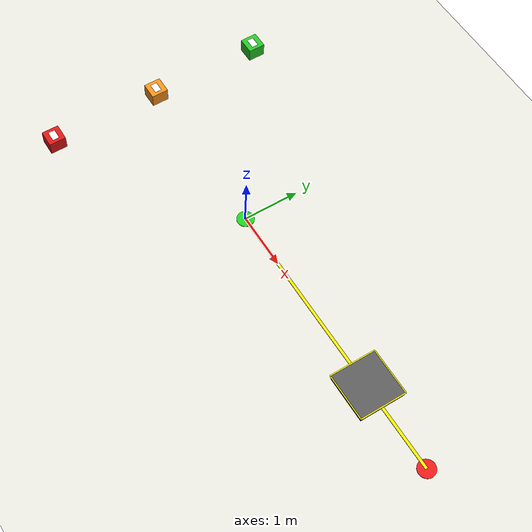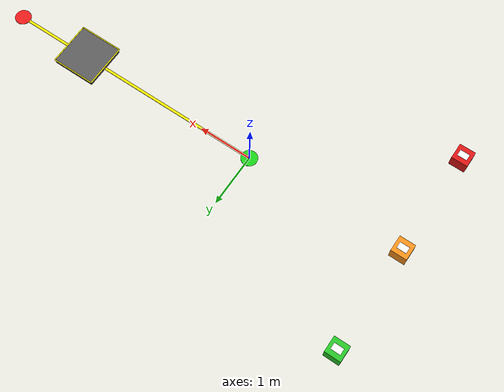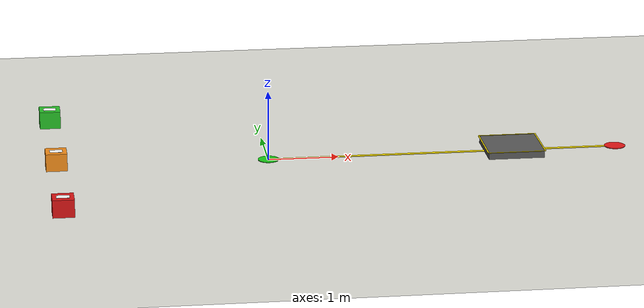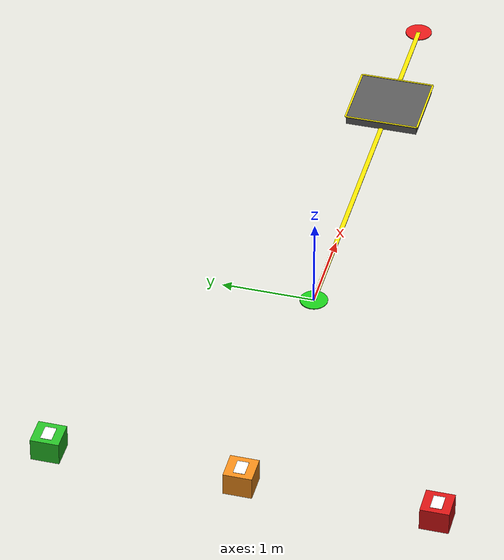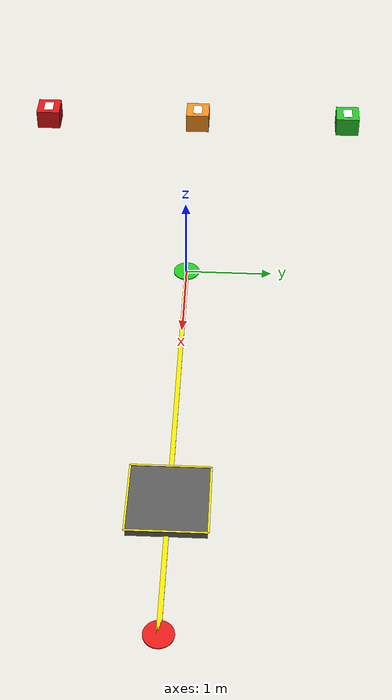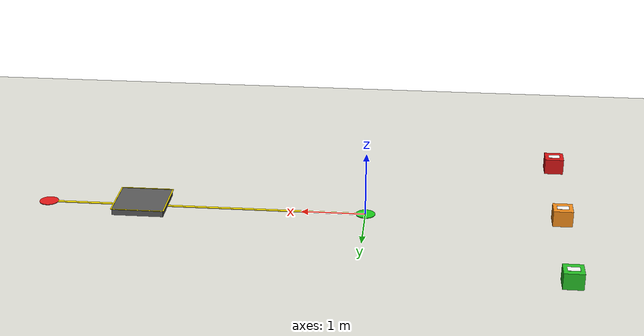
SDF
<?xml version="1.0" ?>
<sdf version="1.7">
  <world name="payload_test">

    <!-- ── Lighting ──────────────────────────────────────────────────── -->
    <light type="directional" name="sun">
      <cast_shadows>true</cast_shadows>
      <pose>0 0 10 0 0 0</pose>
      <diffuse>0.8 0.8 0.8 1</diffuse>
      <specular>0.2 0.2 0.2 1</specular>
      <attenuation>
        <range>1000</range><constant>0.9</constant>
        <linear>0.01</linear><quadratic>0.001</quadratic>
      </attenuation>
      <direction>-0.5 0.1 -0.9</direction>
    </light>

    <!-- ── Physics ───────────────────────────────────────────────────── -->
    <physics name="1ms" type="ignored">
      <max_step_size>0.001</max_step_size>
      <real_time_factor>1.0</real_time_factor>
    </physics>
    <plugin filename="ignition-gazebo-physics-system"
            name="ignition::gazebo::systems::Physics"/>
    <plugin filename="ignition-gazebo-user-commands-system"
            name="ignition::gazebo::systems::UserCommands"/>
    <plugin filename="ignition-gazebo-scene-broadcaster-system"
            name="ignition::gazebo::systems::SceneBroadcaster"/>

    <!-- ── Ground Plane ──────────────────────────────────────────────── -->
    <model name="ground_plane">
      <static>true</static>
      <link name="link">
        <collision name="collision">
          <geometry><plane><normal>0 0 1</normal><size>20 20</size></plane></geometry>
        </collision>
        <visual name="visual">
          <geometry><plane><normal>0 0 1</normal><size>20 20</size></plane></geometry>
          <material>
            <ambient>0.88 0.88 0.85 1</ambient>
            <diffuse>0.88 0.88 0.85 1</diffuse>
          </material>
        </visual>
      </link>
    </model>

    <!-- ── เส้นแนวทาง 5 เมตร (visual only, ไม่มี collision) ──────────── -->
    <model name="path_line">
      <static>true</static>
      <pose>2.5 0 0.005 0 0 0</pose>
      <link name="link">
        <visual name="line">
          <geometry><box><size>5.0 0.05 0.01</size></box></geometry>
          <material><ambient>0.9 0.8 0.0 1</ambient><diffuse>1.0 0.9 0.0 1</diffuse></material>
        </visual>
      </link>
    </model>

    <!-- จุดเริ่มต้น (0, 0) -->
    <model name="start_marker">
      <static>true</static>
      <pose>0 0 0.005 0 0 0</pose>
      <link name="link">
        <visual name="v">
          <geometry><cylinder><radius>0.15</radius><length>0.01</length></cylinder></geometry>
          <material><ambient>0.1 0.7 0.1 1</ambient><diffuse>0.1 0.8 0.1 1</diffuse></material>
        </visual>
      </link>
    </model>

    <!-- จุดสิ้นสุด (5, 0) -->
    <model name="goal_marker">
      <static>true</static>
      <pose>5.0 0 0.005 0 0 0</pose>
      <link name="link">
        <visual name="v">
          <geometry><cylinder><radius>0.15</radius><length>0.01</length></cylinder></geometry>
          <material><ambient>0.8 0.1 0.1 1</ambient><diffuse>0.9 0.1 0.1 1</diffuse></material>
        </visual>
      </link>
    </model>

    <!-- ── Payload Boxes (วางที่สถานี pickup ด้านซ้าย) ──────────────── -->

    <!-- 50 kg — สีเขียว — สถานีซ้ายบน -->
    <model name="payload_box_50kg">
      <pose>-3.0 2.0 0.125 0 0 0</pose>
      <link name="link">
        <inertial>
          <mass>50.0</mass>
          <inertia>
            <ixx>0.635</ixx><iyy>0.635</iyy><izz>0.750</izz>
            <ixy>0</ixy><ixz>0</ixz><iyz>0</iyz>
          </inertia>
        </inertial>
        <visual name="box_body">
          <geometry><box><size>0.3 0.3 0.25</size></box></geometry>
          <material>
            <ambient>0.10 0.65 0.10 1</ambient>
            <diffuse>0.15 0.75 0.15 1</diffuse>
          </material>
        </visual>
        <visual name="label">
          <pose>0 0 0.1255 0 0 0</pose>
          <geometry><box><size>0.18 0.12 0.002</size></box></geometry>
          <material><ambient>0.95 0.95 0.95 1</ambient><diffuse>0.98 0.98 0.98 1</diffuse></material>
        </visual>
        <collision name="collision">
          <geometry><box><size>0.3 0.3 0.25</size></box></geometry>
        </collision>
      </link>
    </model>

    <!-- 100 kg — สีส้ม — สถานีกลาง -->
    <model name="payload_box_100kg">
      <pose>-3.0 0.0 0.125 0 0 0</pose>
      <link name="link">
        <inertial>
          <mass>100.0</mass>
          <inertia>
            <ixx>1.271</ixx><iyy>1.271</iyy><izz>1.500</izz>
            <ixy>0</ixy><ixz>0</ixz><iyz>0</iyz>
          </inertia>
        </inertial>
        <visual name="box_body">
          <geometry><box><size>0.3 0.3 0.25</size></box></geometry>
          <material>
            <ambient>0.85 0.45 0.05 1</ambient>
            <diffuse>0.95 0.55 0.10 1</diffuse>
          </material>
        </visual>
        <visual name="label">
          <pose>0 0 0.1255 0 0 0</pose>
          <geometry><box><size>0.18 0.12 0.002</size></box></geometry>
          <material><ambient>0.95 0.95 0.95 1</ambient><diffuse>0.98 0.98 0.98 1</diffuse></material>
        </visual>
        <collision name="collision">
          <geometry><box><size>0.3 0.3 0.25</size></box></geometry>
        </collision>
      </link>
    </model>

    <!-- 150 kg — สีแดง — สถานีซ้ายล่าง -->
    <model name="payload_box_150kg">
      <pose>-3.0 -2.0 0.125 0 0 0</pose>
      <link name="link">
        <inertial>
          <mass>150.0</mass>
          <inertia>
            <ixx>1.906</ixx><iyy>1.906</iyy><izz>2.250</izz>
            <ixy>0</ixy><ixz>0</ixz><iyz>0</iyz>
          </inertia>
        </inertial>
        <visual name="box_body">
          <geometry><box><size>0.3 0.3 0.25</size></box></geometry>
          <material>
            <ambient>0.70 0.05 0.05 1</ambient>
            <diffuse>0.85 0.08 0.08 1</diffuse>
          </material>
        </visual>
        <visual name="label">
          <pose>0 0 0.1255 0 0 0</pose>
          <geometry><box><size>0.18 0.12 0.002</size></box></geometry>
          <material><ambient>0.95 0.95 0.95 1</ambient><diffuse>0.98 0.98 0.98 1</diffuse></material>
        </visual>
        <collision name="collision">
          <geometry><box><size>0.3 0.3 0.25</size></box></geometry>
        </collision>
      </link>
    </model>

    <!-- ── Delivery Station (จุดส่ง) ─────────────────────────────────── -->
    <!-- แท่นวางสีเทา ตำแหน่ง (3.0, 0.0) — waypoint เป้าหมาย -->
    <model name="delivery_station">
      <static>true</static>
      <pose>3.5 0.0 0.05 0 0 0</pose>
      <link name="link">
        <visual name="platform">
          <geometry><box><size>0.8 0.8 0.10</size></box></geometry>
          <material>
            <ambient>0.30 0.30 0.30 1</ambient>
            <diffuse>0.35 0.35 0.35 1</diffuse>
          </material>
        </visual>
        <!-- กรอบเหลืองแสดงจุด Drop-off -->
        <visual name="border_n">
          <pose>0 0.41 0.051 0 0 0</pose>
          <geometry><box><size>0.82 0.02 0.005</size></box></geometry>
          <material><ambient>0.9 0.8 0.0 1</ambient><diffuse>1.0 0.9 0.0 1</diffuse></material>
        </visual>
        <visual name="border_s">
          <pose>0 -0.41 0.051 0 0 0</pose>
          <geometry><box><size>0.82 0.02 0.005</size></box></geometry>
          <material><ambient>0.9 0.8 0.0 1</ambient><diffuse>1.0 0.9 0.0 1</diffuse></material>
        </visual>
        <visual name="border_e">
          <pose>0.41 0 0.051 0 0 0</pose>
          <geometry><box><size>0.02 0.82 0.005</size></box></geometry>
          <material><ambient>0.9 0.8 0.0 1</ambient><diffuse>1.0 0.9 0.0 1</diffuse></material>
        </visual>
        <visual name="border_w">
          <pose>-0.41 0 0.051 0 0 0</pose>
          <geometry><box><size>0.02 0.82 0.005</size></box></geometry>
          <material><ambient>0.9 0.8 0.0 1</ambient><diffuse>1.0 0.9 0.0 1</diffuse></material>
        </visual>
        <collision name="collision">
          <geometry><box><size>0.8 0.8 0.10</size></box></geometry>
        </collision>
      </link>
    </model>

  </world>
</sdf>
